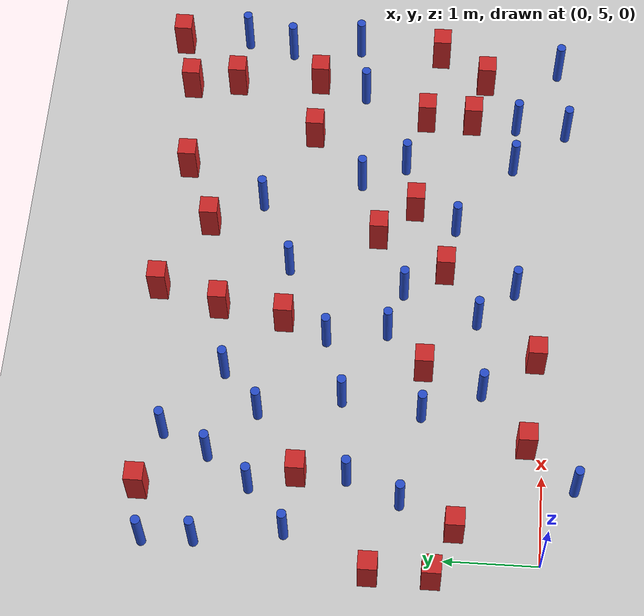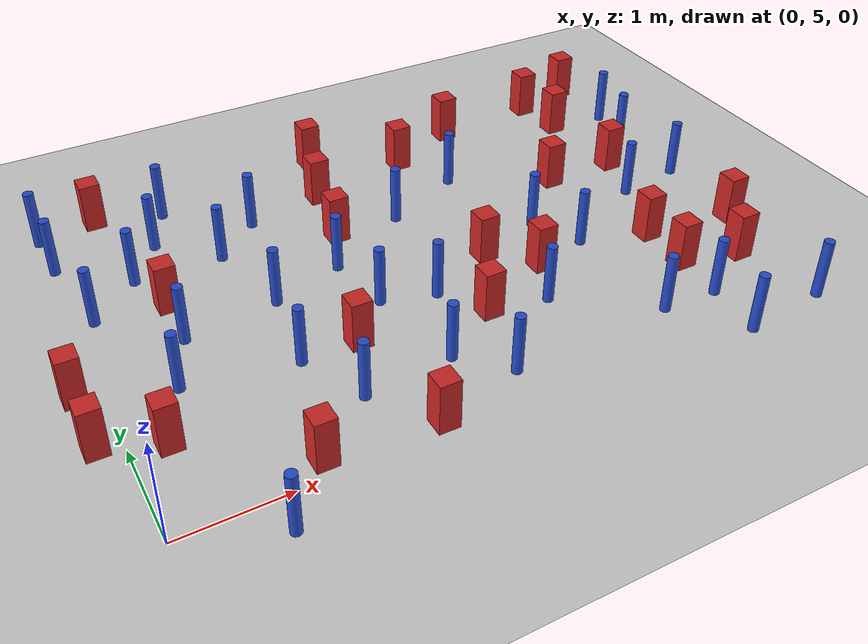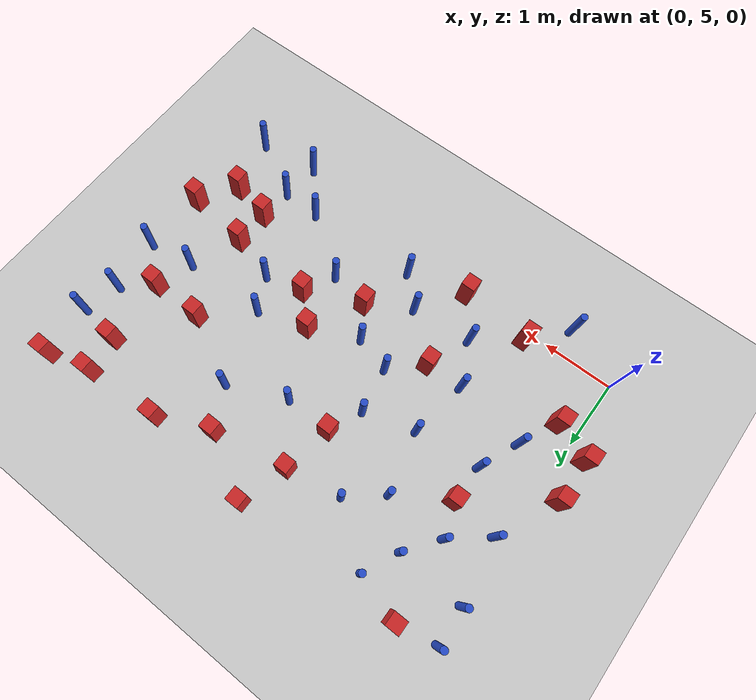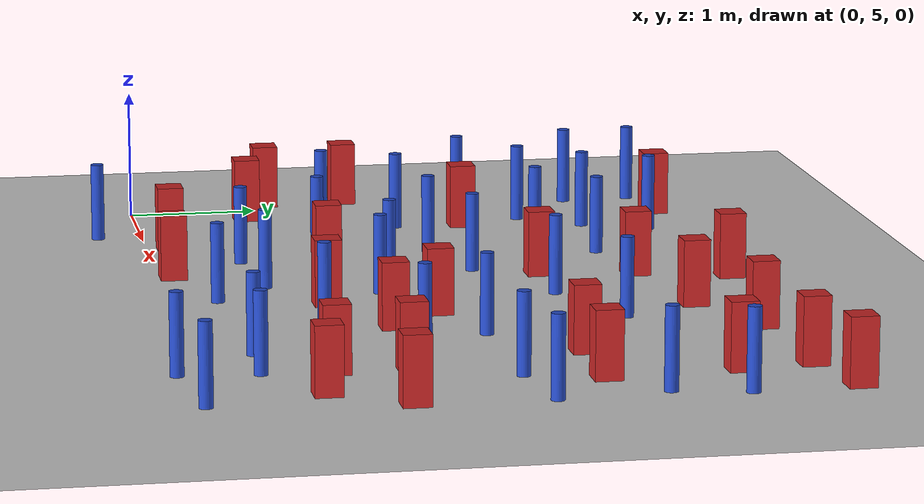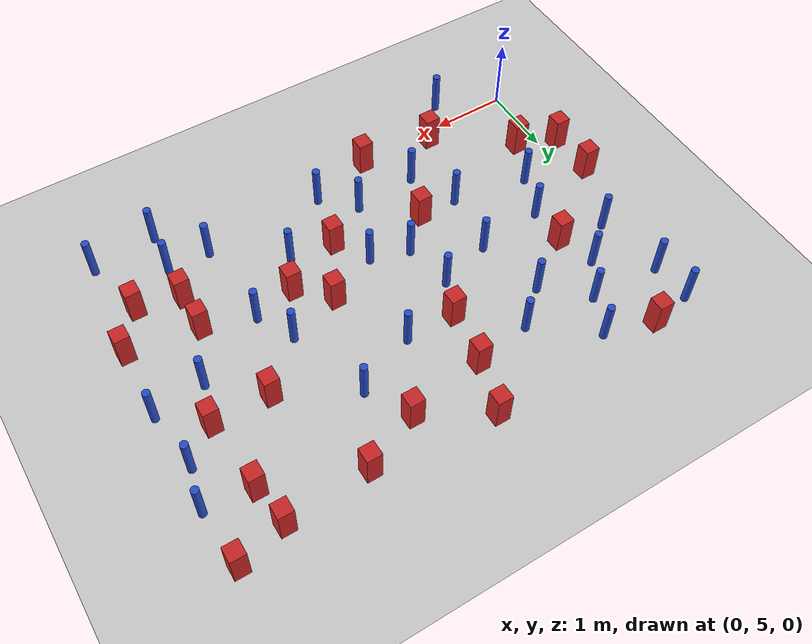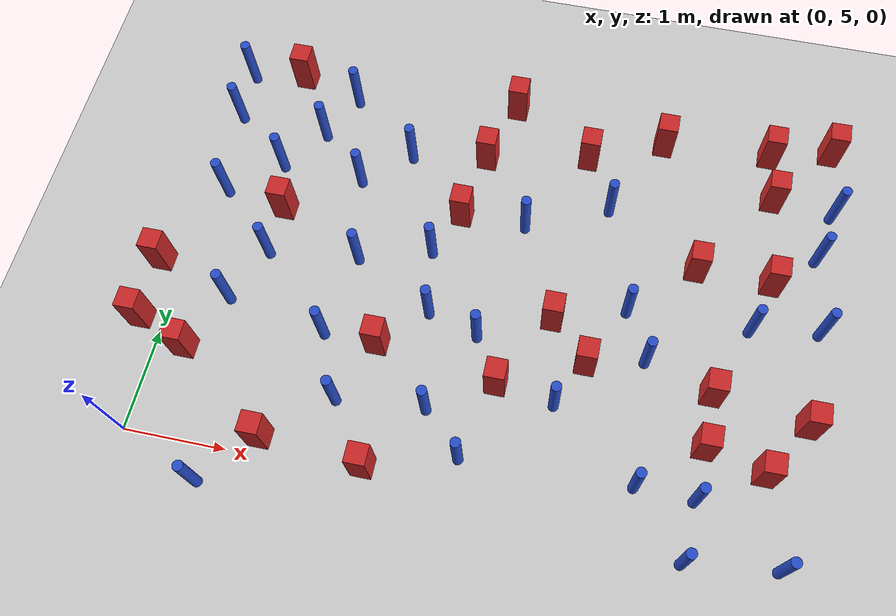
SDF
<sdf version="1.6">
 <world name="default">
  <model name="ground_plane">
   <static>1</static>
   <link name="link">
    <collision name="collision">
     <geometry><plane><normal>0 0 1</normal><size>100 100</size></plane></geometry>
     <surface><friction><ode><mu>100</mu><mu2>50</mu2></ode></friction></surface>
    </collision>
    <visual name="visual">
     <cast_shadows>0</cast_shadows>
     <geometry><plane><normal>0 0 1</normal><size>100 100</size></plane></geometry>
     <material>
      <ambient>1.0 1.0 1.0 1.0</ambient>
      <diffuse>0.8 0.8 0.8 1.0</diffuse>
      <specular>0.01 0.01 0.01 1.000000</specular>
     </material>
    </visual>
   </link>
  </model>
  <model name="pole_obstacle6">
   <static>true</static>
   <pose>1.97811473688 8.43375830006 7.38925637345e-09 -8.47170692798e-08 1.24976764928e-08 -1.74513093023e-07</pose>
   <link name="link">
    <pose>0 0 0.3 0 -0 0</pose>
    <inertial>
     <mass>1</mass>
     <inertia><ixx>0.145833</ixx><ixy>0</ixy><ixz>0</ixz><iyy>0.145833</iyy><iyz>0</iyz><izz>0.125</izz></inertia>
    </inertial>
    <collision name="collision">
     <geometry><cylinder><radius>0.05</radius><length>.6</length></cylinder></geometry>
    </collision>
    <visual name="visual">
     <geometry><cylinder><radius>0.05</radius><length>.6</length></cylinder></geometry>
     <material>
      <script><name>Gazebo/Blue</name><uri>file://media/materials/scripts/gazebo.material</uri></script>
     </material>
    </visual>
   </link>
  </model>
  <model name="square_post_obstacle17">
   <static>true</static>
   <pose>2.96418394877 9.25661673583 1.91545236811e-07 -7.35059704564e-06 1.12565212e-07 2.39332434364e-05</pose>
   <link name="link">
    <pose>0 0 0.25 0 -0 0</pose>
    <inertial>
     <mass>100</mass>
     <inertia>
      <ixx>0.166667</ixx>
      <ixy>0</ixy>
      <ixz>0</ixz>
      <iyy>0.166667</iyy>
      <iyz>0</iyz>
      <izz>0.166667</izz>
     </inertia>
    </inertial>
    <collision name="collision"><geometry><box><size>.2 .2 .5</size></box></geometry></collision>
    <visual name="visual">
     <geometry><box><size>.2 .2 .5</size></box></geometry>
     <material>
      <script><name>Gazebo/Red</name><uri>file://media/materials/scripts/gazebo.material</uri></script>
     </material>
    </visual>
   </link>
  </model>
  <model name="pole_obstacle13">
   <static>true</static>
   <pose>1.72117849599 7.15123532214 7.38925637345e-09 -8.47170692799e-08 1.24976765033e-08 -1.74513093018e-07</pose>
   <link name="link">
    <pose>0 0 0.3 0 -0 0</pose>
    <inertial>
     <mass>1</mass>
     <inertia><ixx>0.145833</ixx><ixy>0</ixy><ixz>0</ixz><iyy>0.145833</iyy><iyz>0</iyz><izz>0.125</izz></inertia>
    </inertial>
    <collision name="collision">
     <geometry><cylinder><radius>0.05</radius><length>.6</length></cylinder></geometry>
    </collision>
    <visual name="visual">
     <geometry><cylinder><radius>0.05</radius><length>.6</length></cylinder></geometry>
     <material>
      <script><name>Gazebo/Blue</name><uri>file://media/materials/scripts/gazebo.material</uri></script>
     </material>
    </visual>
   </link>
  </model>
  <model name="pole_obstacle25">
   <static>true</static>
   <pose>0.84421997213 4.65954832367 7.38925637345e-09 -8.471706928e-08 1.24976765086e-08 -1.74513093015e-07</pose>
   <link name="link">
    <pose>0 0 0.3 0 -0 0</pose>
    <inertial>
     <mass>1</mass>
     <inertia><ixx>0.145833</ixx><ixy>0</ixy><ixz>0</ixz><iyy>0.145833</iyy><iyz>0</iyz><izz>0.125</izz></inertia>
    </inertial>
    <collision name="collision">
     <geometry><cylinder><radius>0.05</radius><length>.6</length></cylinder></geometry>
    </collision>
    <visual name="visual">
     <geometry><cylinder><radius>0.05</radius><length>.6</length></cylinder></geometry>
     <material>
      <script><name>Gazebo/Blue</name><uri>file://media/materials/scripts/gazebo.material</uri></script>
     </material>
    </visual>
   </link>
  </model>
  <model name="pole_obstacle33">
   <static>true</static>
   <pose>0.0466083620109 8.56863921518 7.38925637345e-09 -8.47170692796e-08 1.24976764747e-08 -1.74513093035e-07</pose>
   <link name="link">
    <pose>0 0 0.3 0 -0 0</pose>
    <inertial>
     <mass>1</mass>
     <inertia><ixx>0.145833</ixx><ixy>0</ixy><ixz>0</ixz><iyy>0.145833</iyy><iyz>0</iyz><izz>0.125</izz></inertia>
    </inertial>
    <collision name="collision">
     <geometry><cylinder><radius>0.05</radius><length>.6</length></cylinder></geometry>
    </collision>
    <visual name="visual">
     <geometry><cylinder><radius>0.05</radius><length>.6</length></cylinder></geometry>
     <material>
      <script><name>Gazebo/Blue</name><uri>file://media/materials/scripts/gazebo.material</uri></script>
     </material>
    </visual>
   </link>
  </model>
  <model name="square_post_obstacle36">
   <static>true</static>
   <pose>2.13644922375 6.29774191643 1.91545236811e-07 -7.35059704564e-06 1.12565212e-07 2.39332434364e-05</pose>
   <link name="link">
    <pose>0 0 0.25 0 -0 0</pose>
    <inertial>
     <mass>100</mass>
     <inertia>
      <ixx>0.166667</ixx>
      <ixy>0</ixy>
      <ixz>0</ixz>
      <iyy>0.166667</iyy>
      <iyz>0</iyz>
      <izz>0.166667</izz>
     </inertia>
    </inertial>
    <collision name="collision"><geometry><box><size>.2 .2 .5</size></box></geometry></collision>
    <visual name="visual">
     <geometry><box><size>.2 .2 .5</size></box></geometry>
     <material>
      <script><name>Gazebo/Red</name><uri>file://media/materials/scripts/gazebo.material</uri></script>
     </material>
    </visual>
   </link>
  </model>
  <model name="pole_obstacle38">
   <static>true</static>
   <pose>3.14898956318 5.33751169385 7.38925637345e-09 -8.47170692798e-08 1.24976765033e-08 -1.74513093019e-07</pose>
   <link name="link">
    <pose>0 0 0.3 0 -0 0</pose>
    <inertial>
     <mass>1</mass>
     <inertia><ixx>0.145833</ixx><ixy>0</ixy><ixz>0</ixz><iyy>0.145833</iyy><iyz>0</iyz><izz>0.125</izz></inertia>
    </inertial>
    <collision name="collision">
     <geometry><cylinder><radius>0.05</radius><length>.6</length></cylinder></geometry>
    </collision>
    <visual name="visual">
     <geometry><cylinder><radius>0.05</radius><length>.6</length></cylinder></geometry>
     <material>
      <script><name>Gazebo/Blue</name><uri>file://media/materials/scripts/gazebo.material</uri></script>
     </material>
    </visual>
   </link>
  </model>
  <model name="square_post_obstacle53">
   <static>true</static>
   <pose>2.30620487452 5.09637616622 1.91545236811e-07 -7.35059704564e-06 1.12565212e-07 2.39332434364e-05</pose>
   <link name="link">
    <pose>0 0 0.25 0 -0 0</pose>
    <inertial>
     <mass>100</mass>
     <inertia>
      <ixx>0.166667</ixx>
      <ixy>0</ixy>
      <ixz>0</ixz>
      <iyy>0.166667</iyy>
      <iyz>0</iyz>
      <izz>0.166667</izz>
     </inertia>
    </inertial>
    <collision name="collision"><geometry><box><size>.2 .2 .5</size></box></geometry></collision>
    <visual name="visual">
     <geometry><box><size>.2 .2 .5</size></box></geometry>
     <material>
      <script><name>Gazebo/Red</name><uri>file://media/materials/scripts/gazebo.material</uri></script>
     </material>
    </visual>
   </link>
  </model>
  <model name="square_post_obstacle55">
   <static>true</static>
   <pose>5.36216218477 5.88626023428 1.91545236811e-07 -7.35059704564e-06 1.12565212e-07 2.39332434364e-05</pose>
   <link name="link">
    <pose>0 0 0.25 0 -0 0</pose>
    <inertial>
     <mass>100</mass>
     <inertia>
      <ixx>0.166667</ixx>
      <ixy>0</ixy>
      <ixz>0</ixz>
      <iyy>0.166667</iyy>
      <iyz>0</iyz>
      <izz>0.166667</izz>
     </inertia>
    </inertial>
    <collision name="collision"><geometry><box><size>.2 .2 .5</size></box></geometry></collision>
    <visual name="visual">
     <geometry><box><size>.2 .2 .5</size></box></geometry>
     <material>
      <script><name>Gazebo/Red</name><uri>file://media/materials/scripts/gazebo.material</uri></script>
     </material>
    </visual>
   </link>
  </model>
  <model name="pole_obstacle55">
   <static>true</static>
   <pose>3.30352325452 7.84174564454 7.38925637345e-09 -8.47170692798e-08 1.24976765033e-08 -1.74513093019e-07</pose>
   <link name="link">
    <pose>0 0 0.3 0 -0 0</pose>
    <inertial>
     <mass>1</mass>
     <inertia><ixx>0.145833</ixx><ixy>0</ixy><ixz>0</ixz><iyy>0.145833</iyy><iyz>0</iyz><izz>0.125</izz></inertia>
    </inertial>
    <collision name="collision">
     <geometry><cylinder><radius>0.05</radius><length>.6</length></cylinder></geometry>
    </collision>
    <visual name="visual">
     <geometry><cylinder><radius>0.05</radius><length>.6</length></cylinder></geometry>
     <material>
      <script><name>Gazebo/Blue</name><uri>file://media/materials/scripts/gazebo.material</uri></script>
     </material>
    </visual>
   </link>
  </model>
  <model name="square_post_obstacle60">
   <static>true</static>
   <pose>5.0766175703 7.69103012784 1.91545236811e-07 -7.35059704564e-06 1.12565212e-07 2.39332434364e-05</pose>
   <link name="link">
    <pose>0 0 0.25 0 -0 0</pose>
    <inertial>
     <mass>100</mass>
     <inertia>
      <ixx>0.166667</ixx>
      <ixy>0</ixy>
      <ixz>0</ixz>
      <iyy>0.166667</iyy>
      <iyz>0</iyz>
      <izz>0.166667</izz>
     </inertia>
    </inertial>
    <collision name="collision"><geometry><box><size>.2 .2 .5</size></box></geometry></collision>
    <visual name="visual">
     <geometry><box><size>.2 .2 .5</size></box></geometry>
     <material>
      <script><name>Gazebo/Red</name><uri>file://media/materials/scripts/gazebo.material</uri></script>
     </material>
    </visual>
   </link>
  </model>
  <model name="square_post_obstacle62">
   <static>true</static>
   <pose>5.37168386621 6.41705859318 1.91545236811e-07 -7.35059704564e-06 1.12565212e-07 2.39332434364e-05</pose>
   <link name="link">
    <pose>0 0 0.25 0 -0 0</pose>
    <inertial>
     <mass>100</mass>
     <inertia>
      <ixx>0.166667</ixx>
      <ixy>0</ixy>
      <ixz>0</ixz>
      <iyy>0.166667</iyy>
      <iyz>0</iyz>
      <izz>0.166667</izz>
     </inertia>
    </inertial>
    <collision name="collision"><geometry><box><size>.2 .2 .5</size></box></geometry></collision>
    <visual name="visual">
     <geometry><box><size>.2 .2 .5</size></box></geometry>
     <material>
      <script><name>Gazebo/Red</name><uri>file://media/materials/scripts/gazebo.material</uri></script>
     </material>
    </visual>
   </link>
  </model>
  <model name="square_post_obstacle67">
   <static>true</static>
   <pose>2.64503546699 7.84731310662 1.91545236811e-07 -7.35059704564e-06 1.12565212e-07 2.39332434364e-05</pose>
   <link name="link">
    <pose>0 0 0.25 0 -0 0</pose>
    <inertial>
     <mass>100</mass>
     <inertia>
      <ixx>0.166667</ixx>
      <ixy>0</ixy>
      <ixz>0</ixz>
      <iyy>0.166667</iyy>
      <iyz>0</iyz>
      <izz>0.166667</izz>
     </inertia>
    </inertial>
    <collision name="collision"><geometry><box><size>.2 .2 .5</size></box></geometry></collision>
    <visual name="visual">
     <geometry><box><size>.2 .2 .5</size></box></geometry>
     <material>
      <script><name>Gazebo/Red</name><uri>file://media/materials/scripts/gazebo.material</uri></script>
     </material>
    </visual>
   </link>
  </model>
  <model name="square_post_obstacle68">
   <static>true</static>
   <pose>1.29432825732 5.17916578212 1.91545236811e-07 -7.35059704564e-06 1.12565212e-07 2.39332434364e-05</pose>
   <link name="link">
    <pose>0 0 0.25 0 -0 0</pose>
    <inertial>
     <mass>100</mass>
     <inertia>
      <ixx>0.166667</ixx>
      <ixy>0</ixy>
      <ixz>0</ixz>
      <iyy>0.166667</iyy>
      <iyz>0</iyz>
      <izz>0.166667</izz>
     </inertia>
    </inertial>
    <collision name="collision"><geometry><box><size>.2 .2 .5</size></box></geometry></collision>
    <visual name="visual">
     <geometry><box><size>.2 .2 .5</size></box></geometry>
     <material>
      <script><name>Gazebo/Red</name><uri>file://media/materials/scripts/gazebo.material</uri></script>
     </material>
    </visual>
   </link>
  </model>
  <model name="pole_obstacle66">
   <static>true</static>
   <pose>1.23211396321 9.01468942937 7.38925637345e-09 -8.47170692798e-08 1.24976764881e-08 -1.74513093027e-07</pose>
   <link name="link">
    <pose>0 0 0.3 0 -0 0</pose>
    <inertial>
     <mass>1</mass>
     <inertia><ixx>0.145833</ixx><ixy>0</ixy><ixz>0</ixz><iyy>0.145833</iyy><iyz>0</iyz><izz>0.125</izz></inertia>
    </inertial>
    <collision name="collision">
     <geometry><cylinder><radius>0.05</radius><length>.6</length></cylinder></geometry>
    </collision>
    <visual name="visual">
     <geometry><cylinder><radius>0.05</radius><length>.6</length></cylinder></geometry>
     <material>
      <script><name>Gazebo/Blue</name><uri>file://media/materials/scripts/gazebo.material</uri></script>
     </material>
    </visual>
   </link>
  </model>
  <model name="pole_obstacle67">
   <static>true</static>
   <pose>1.00043300662 8.52085059311 7.38925637345e-09 -8.47170692797e-08 1.24976764856e-08 -1.74513093028e-07</pose>
   <link name="link">
    <pose>0 0 0.3 0 -0 0</pose>
    <inertial>
     <mass>1</mass>
     <inertia><ixx>0.145833</ixx><ixy>0</ixy><ixz>0</ixz><iyy>0.145833</iyy><iyz>0</iyz><izz>0.125</izz></inertia>
    </inertial>
    <collision name="collision">
     <geometry><cylinder><radius>0.05</radius><length>.6</length></cylinder></geometry>
    </collision>
    <visual name="visual">
     <geometry><cylinder><radius>0.05</radius><length>.6</length></cylinder></geometry>
     <material>
      <script><name>Gazebo/Blue</name><uri>file://media/materials/scripts/gazebo.material</uri></script>
     </material>
    </visual>
   </link>
  </model>
  <model name="square_post_obstacle74">
   <static>true</static>
   <pose>5.93639313642 5.74820276157 1.91545236811e-07 -7.35059704564e-06 1.12565212e-07 2.39332434364e-05</pose>
   <link name="link">
    <pose>0 0 0.25 0 -0 0</pose>
    <inertial>
     <mass>100</mass>
     <inertia>
      <ixx>0.166667</ixx>
      <ixy>0</ixy>
      <ixz>0</ixz>
      <iyy>0.166667</iyy>
      <iyz>0</iyz>
      <izz>0.166667</izz>
     </inertia>
    </inertial>
    <collision name="collision"><geometry><box><size>.2 .2 .5</size></box></geometry></collision>
    <visual name="visual">
     <geometry><box><size>.2 .2 .5</size></box></geometry>
     <material>
      <script><name>Gazebo/Red</name><uri>file://media/materials/scripts/gazebo.material</uri></script>
     </material>
    </visual>
   </link>
  </model>
  <model name="pole_obstacle70">
   <static>true</static>
   <pose>3.06883253936 6.56024751738 7.38925637345e-09 -8.47170692798e-08 1.24976765033e-08 -1.74513093019e-07</pose>
   <link name="link">
    <pose>0 0 0.3 0 -0 0</pose>
    <inertial>
     <mass>1</mass>
     <inertia><ixx>0.145833</ixx><ixy>0</ixy><ixz>0</ixz><iyy>0.145833</iyy><iyz>0</iyz><izz>0.125</izz></inertia>
    </inertial>
    <collision name="collision">
     <geometry><cylinder><radius>0.05</radius><length>.6</length></cylinder></geometry>
    </collision>
    <visual name="visual">
     <geometry><cylinder><radius>0.05</radius><length>.6</length></cylinder></geometry>
     <material>
      <script><name>Gazebo/Blue</name><uri>file://media/materials/scripts/gazebo.material</uri></script>
     </material>
    </visual>
   </link>
  </model>
  <model name="pole_obstacle77">
   <static>true</static>
   <pose>0.577146240272 6.47438790878 7.38925637345e-09 -8.471706928e-08 1.24976765086e-08 -1.74513093015e-07</pose>
   <link name="link">
    <pose>0 0 0.3 0 -0 0</pose>
    <inertial>
     <mass>1</mass>
     <inertia><ixx>0.145833</ixx><ixy>0</ixy><ixz>0</ixz><iyy>0.145833</iyy><iyz>0</iyz><izz>0.125</izz></inertia>
    </inertial>
    <collision name="collision">
     <geometry><cylinder><radius>0.05</radius><length>.6</length></cylinder></geometry>
    </collision>
    <visual name="visual">
     <geometry><cylinder><radius>0.05</radius><length>.6</length></cylinder></geometry>
     <material>
      <script><name>Gazebo/Blue</name><uri>file://media/materials/scripts/gazebo.material</uri></script>
     </material>
    </visual>
   </link>
  </model>
  <model name="square_post_obstacle78">
   <static>true</static>
   <pose>5.75801491974 8.6457235525 1.91545236811e-07 -7.35059704564e-06 1.12565212e-07 2.39332434364e-05</pose>
   <link name="link">
    <pose>0 0 0.25 0 -0 0</pose>
    <inertial>
     <mass>100</mass>
     <inertia>
      <ixx>0.166667</ixx>
      <ixy>0</ixy>
      <ixz>0</ixz>
      <iyy>0.166667</iyy>
      <iyz>0</iyz>
      <izz>0.166667</izz>
     </inertia>
    </inertial>
    <collision name="collision"><geometry><box><size>.2 .2 .5</size></box></geometry></collision>
    <visual name="visual">
     <geometry><box><size>.2 .2 .5</size></box></geometry>
     <material>
      <script><name>Gazebo/Red</name><uri>file://media/materials/scripts/gazebo.material</uri></script>
     </material>
    </visual>
   </link>
  </model>
  <model name="pole_obstacle81">
   <static>true</static>
   <pose>1.51929210031 8.03765635364 7.38925637345e-09 -8.471706928e-08 1.24976765113e-08 -1.74513093014e-07</pose>
   <link name="link">
    <pose>0 0 0.3 0 -0 0</pose>
    <inertial>
     <mass>1</mass>
     <inertia><ixx>0.145833</ixx><ixy>0</ixy><ixz>0</ixz><iyy>0.145833</iyy><iyz>0</iyz><izz>0.125</izz></inertia>
    </inertial>
    <collision name="collision">
     <geometry><cylinder><radius>0.05</radius><length>.6</length></cylinder></geometry>
    </collision>
    <visual name="visual">
     <geometry><cylinder><radius>0.05</radius><length>.6</length></cylinder></geometry>
     <material>
      <script><name>Gazebo/Blue</name><uri>file://media/materials/scripts/gazebo.material</uri></script>
     </material>
    </visual>
   </link>
  </model>
  <model name="pole_obstacle82">
   <static>true</static>
   <pose>1.88665570525 5.66354823339 7.38925637345e-09 -8.47170692799e-08 1.24976765033e-08 -1.74513093018e-07</pose>
   <link name="link">
    <pose>0 0 0.3 0 -0 0</pose>
    <inertial>
     <mass>1</mass>
     <inertia><ixx>0.145833</ixx><ixy>0</ixy><ixz>0</ixz><iyy>0.145833</iyy><iyz>0</iyz><izz>0.125</izz></inertia>
    </inertial>
    <collision name="collision">
     <geometry><cylinder><radius>0.05</radius><length>.6</length></cylinder></geometry>
    </collision>
    <visual name="visual">
     <geometry><cylinder><radius>0.05</radius><length>.6</length></cylinder></geometry>
     <material>
      <script><name>Gazebo/Blue</name><uri>file://media/materials/scripts/gazebo.material</uri></script>
     </material>
    </visual>
   </link>
  </model>
  <model name="pole_obstacle86">
   <static>true</static>
   <pose>5.33539405761 5.37617692699 7.38925637345e-09 -8.47170692796e-08 1.24976764786e-08 -1.74513093032e-07</pose>
   <link name="link">
    <pose>0 0 0.3 0 -0 0</pose>
    <inertial>
     <mass>1</mass>
     <inertia><ixx>0.145833</ixx><ixy>0</ixy><ixz>0</ixz><iyy>0.145833</iyy><iyz>0</iyz><izz>0.125</izz></inertia>
    </inertial>
    <collision name="collision">
     <geometry><cylinder><radius>0.05</radius><length>.6</length></cylinder></geometry>
    </collision>
    <visual name="visual">
     <geometry><cylinder><radius>0.05</radius><length>.6</length></cylinder></geometry>
     <material>
      <script><name>Gazebo/Blue</name><uri>file://media/materials/scripts/gazebo.material</uri></script>
     </material>
    </visual>
   </link>
  </model>
  <model name="pole_obstacle94">
   <static>true</static>
   <pose>0.812473880551 7.04076689454 7.38925637345e-09 -8.471706928e-08 1.24976765086e-08 -1.74513093015e-07</pose>
   <link name="link">
    <pose>0 0 0.3 0 -0 0</pose>
    <inertial>
     <mass>1</mass>
     <inertia><ixx>0.145833</ixx><ixy>0</ixy><ixz>0</ixz><iyy>0.145833</iyy><iyz>0</iyz><izz>0.125</izz></inertia>
    </inertial>
    <collision name="collision">
     <geometry><cylinder><radius>0.05</radius><length>.6</length></cylinder></geometry>
    </collision>
    <visual name="visual">
     <geometry><cylinder><radius>0.05</radius><length>.6</length></cylinder></geometry>
     <material>
      <script><name>Gazebo/Blue</name><uri>file://media/materials/scripts/gazebo.material</uri></script>
     </material>
    </visual>
   </link>
  </model>
  <model name="square_post_obstacle88">
   <static>true</static>
   <pose>3.81712292997 8.77498464341 1.91545236811e-07 -7.35059704564e-06 1.12565212e-07 2.39332434364e-05</pose>
   <link name="link">
    <pose>0 0 0.25 0 -0 0</pose>
    <inertial>
     <mass>100</mass>
     <inertia>
      <ixx>0.166667</ixx>
      <ixy>0</ixy>
      <ixz>0</ixz>
      <iyy>0.166667</iyy>
      <iyz>0</iyz>
      <izz>0.166667</izz>
     </inertia>
    </inertial>
    <collision name="collision"><geometry><box><size>.2 .2 .5</size></box></geometry></collision>
    <visual name="visual">
     <geometry><box><size>.2 .2 .5</size></box></geometry>
     <material>
      <script><name>Gazebo/Red</name><uri>file://media/materials/scripts/gazebo.material</uri></script>
     </material>
    </visual>
   </link>
  </model>
  <model name="square_post_obstacle97">
   <static>true</static>
   <pose>0.310640364188 5.89950248195 1.91545236811e-07 -7.35059704564e-06 1.12565212e-07 2.39332434364e-05</pose>
   <link name="link">
    <pose>0 0 0.25 0 -0 0</pose>
    <inertial>
     <mass>100</mass>
     <inertia>
      <ixx>0.166667</ixx>
      <ixy>0</ixy>
      <ixz>0</ixz>
      <iyy>0.166667</iyy>
      <iyz>0</iyz>
      <izz>0.166667</izz>
     </inertia>
    </inertial>
    <collision name="collision"><geometry><box><size>.2 .2 .5</size></box></geometry></collision>
    <visual name="visual">
     <geometry><box><size>.2 .2 .5</size></box></geometry>
     <material>
      <script><name>Gazebo/Red</name><uri>file://media/materials/scripts/gazebo.material</uri></script>
     </material>
    </visual>
   </link>
  </model>
  <model name="pole_obstacle115">
   <static>true</static>
   <pose>6.25512532329 8.03813822539 7.38925637345e-09 -8.47170692797e-08 1.24976764908e-08 -1.74513093024e-07</pose>
   <link name="link">
    <pose>0 0 0.3 0 -0 0</pose>
    <inertial>
     <mass>1</mass>
     <inertia><ixx>0.145833</ixx><ixy>0</ixy><ixz>0</ixz><iyy>0.145833</iyy><iyz>0</iyz><izz>0.125</izz></inertia>
    </inertial>
    <collision name="collision">
     <geometry><cylinder><radius>0.05</radius><length>.6</length></cylinder></geometry>
    </collision>
    <visual name="visual">
     <geometry><cylinder><radius>0.05</radius><length>.6</length></cylinder></geometry>
     <material>
      <script><name>Gazebo/Blue</name><uri>file://media/materials/scripts/gazebo.material</uri></script>
     </material>
    </visual>
   </link>
  </model>
  <model name="pole_obstacle128">
   <static>true</static>
   <pose>3.92577561285 6.01952358238 7.38925637345e-09 -8.47170692798e-08 1.24976765033e-08 -1.74513093019e-07</pose>
   <link name="link">
    <pose>0 0 0.3 0 -0 0</pose>
    <inertial>
     <mass>1</mass>
     <inertia><ixx>0.145833</ixx><ixy>0</ixy><ixz>0</ixz><iyy>0.145833</iyy><iyz>0</iyz><izz>0.125</izz></inertia>
    </inertial>
    <collision name="collision">
     <geometry><cylinder><radius>0.05</radius><length>.6</length></cylinder></geometry>
    </collision>
    <visual name="visual">
     <geometry><cylinder><radius>0.05</radius><length>.6</length></cylinder></geometry>
     <material>
      <script><name>Gazebo/Blue</name><uri>file://media/materials/scripts/gazebo.material</uri></script>
     </material>
    </visual>
   </link>
  </model>
  <model name="pole_obstacle131">
   <static>true</static>
   <pose>0.0209783094043 9.10523732424 7.38925637345e-09 -8.47170692796e-08 1.24976764795e-08 -1.74513093032e-07</pose>
   <link name="link">
    <pose>0 0 0.3 0 -0 0</pose>
    <inertial>
     <mass>1</mass>
     <inertia><ixx>0.145833</ixx><ixy>0</ixy><ixz>0</ixz><iyy>0.145833</iyy><iyz>0</iyz><izz>0.125</izz></inertia>
    </inertial>
    <collision name="collision">
     <geometry><cylinder><radius>0.05</radius><length>.6</length></cylinder></geometry>
    </collision>
    <visual name="visual">
     <geometry><cylinder><radius>0.05</radius><length>.6</length></cylinder></geometry>
     <material>
      <script><name>Gazebo/Blue</name><uri>file://media/materials/scripts/gazebo.material</uri></script>
     </material>
    </visual>
   </link>
  </model>
  <model name="pole_obstacle133">
   <static>true</static>
   <pose>0.179986098436 7.64838408767 7.38925637345e-09 -8.47170692799e-08 1.24976765068e-08 -1.74513093018e-07</pose>
   <link name="link">
    <pose>0 0 0.3 0 -0 0</pose>
    <inertial>
     <mass>1</mass>
     <inertia><ixx>0.145833</ixx><ixy>0</ixy><ixz>0</ixz><iyy>0.145833</iyy><iyz>0</iyz><izz>0.125</izz></inertia>
    </inertial>
    <collision name="collision">
     <geometry><cylinder><radius>0.05</radius><length>.6</length></cylinder></geometry>
    </collision>
    <visual name="visual">
     <geometry><cylinder><radius>0.05</radius><length>.6</length></cylinder></geometry>
     <material>
      <script><name>Gazebo/Blue</name><uri>file://media/materials/scripts/gazebo.material</uri></script>
     </material>
    </visual>
   </link>
  </model>
  <model name="square_post_obstacle118">
   <static>true</static>
   <pose>5.83151491091 7.68344500488 1.91545236811e-07 -7.35059704564e-06 1.12565212e-07 2.39332434364e-05</pose>
   <link name="link">
    <pose>0 0 0.25 0 -0 0</pose>
    <inertial>
     <mass>100</mass>
     <inertia>
      <ixx>0.166667</ixx>
      <ixy>0</ixy>
      <ixz>0</ixz>
      <iyy>0.166667</iyy>
      <iyz>0</iyz>
      <izz>0.166667</izz>
     </inertia>
    </inertial>
    <collision name="collision"><geometry><box><size>.2 .2 .5</size></box></geometry></collision>
    <visual name="visual">
     <geometry><box><size>.2 .2 .5</size></box></geometry>
     <material>
      <script><name>Gazebo/Red</name><uri>file://media/materials/scripts/gazebo.material</uri></script>
     </material>
    </visual>
   </link>
  </model>
  <model name="square_post_obstacle123">
   <static>true</static>
   <pose>4.57156933756 9.09993179304 1.91545236811e-07 -7.35059704564e-06 1.12565212e-07 2.39332434364e-05</pose>
   <link name="link">
    <pose>0 0 0.25 0 -0 0</pose>
    <inertial>
     <mass>100</mass>
     <inertia>
      <ixx>0.166667</ixx>
      <ixy>0</ixy>
      <ixz>0</ixz>
      <iyy>0.166667</iyy>
      <iyz>0</iyz>
      <izz>0.166667</izz>
     </inertia>
    </inertial>
    <collision name="collision"><geometry><box><size>.2 .2 .5</size></box></geometry></collision>
    <visual name="visual">
     <geometry><box><size>.2 .2 .5</size></box></geometry>
     <material>
      <script><name>Gazebo/Red</name><uri>file://media/materials/scripts/gazebo.material</uri></script>
     </material>
    </visual>
   </link>
  </model>
  <model name="square_post_obstacle126">
   <static>true</static>
   <pose>4.15135688864 6.4876872852 1.91545236811e-07 -7.35059704564e-06 1.12565212e-07 2.39332434364e-05</pose>
   <link name="link">
    <pose>0 0 0.25 0 -0 0</pose>
    <inertial>
     <mass>100</mass>
     <inertia>
      <ixx>0.166667</ixx>
      <ixy>0</ixy>
      <ixz>0</ixz>
      <iyy>0.166667</iyy>
      <iyz>0</iyz>
      <izz>0.166667</izz>
     </inertia>
    </inertial>
    <collision name="collision"><geometry><box><size>.2 .2 .5</size></box></geometry></collision>
    <visual name="visual">
     <geometry><box><size>.2 .2 .5</size></box></geometry>
     <material>
      <script><name>Gazebo/Red</name><uri>file://media/materials/scripts/gazebo.material</uri></script>
     </material>
    </visual>
   </link>
  </model>
  <model name="pole_obstacle145">
   <static>true</static>
   <pose>5.28204686824 4.80525340802 7.38925637345e-09 -8.47170692796e-08 1.24976764786e-08 -1.74513093032e-07</pose>
   <link name="link">
    <pose>0 0 0.3 0 -0 0</pose>
    <inertial>
     <mass>1</mass>
     <inertia><ixx>0.145833</ixx><ixy>0</ixy><ixz>0</ixz><iyy>0.145833</iyy><iyz>0</iyz><izz>0.125</izz></inertia>
    </inertial>
    <collision name="collision">
     <geometry><cylinder><radius>0.05</radius><length>.6</length></cylinder></geometry>
    </collision>
    <visual name="visual">
     <geometry><cylinder><radius>0.05</radius><length>.6</length></cylinder></geometry>
     <material>
      <script><name>Gazebo/Blue</name><uri>file://media/materials/scripts/gazebo.material</uri></script>
     </material>
    </visual>
   </link>
  </model>
  <model name="pole_obstacle146">
   <static>true</static>
   <pose>4.77759938572 5.39686395434 7.38925637345e-09 -8.47170692796e-08 1.24976764786e-08 -1.74513093032e-07</pose>
   <link name="link">
    <pose>0 0 0.3 0 -0 0</pose>
    <inertial>
     <mass>1</mass>
     <inertia><ixx>0.145833</ixx><ixy>0</ixy><ixz>0</ixz><iyy>0.145833</iyy><iyz>0</iyz><izz>0.125</izz></inertia>
    </inertial>
    <collision name="collision">
     <geometry><cylinder><radius>0.05</radius><length>.6</length></cylinder></geometry>
    </collision>
    <visual name="visual">
     <geometry><cylinder><radius>0.05</radius><length>.6</length></cylinder></geometry>
     <material>
      <script><name>Gazebo/Blue</name><uri>file://media/materials/scripts/gazebo.material</uri></script>
     </material>
    </visual>
   </link>
  </model>
  <model name="pole_obstacle147">
   <static>true</static>
   <pose>4.46471975863 7.10875669776 7.38925637345e-09 -8.47170692796e-08 1.24976764786e-08 -1.74513093032e-07</pose>
   <link name="link">
    <pose>0 0 0.3 0 -0 0</pose>
    <inertial>
     <mass>1</mass>
     <inertia><ixx>0.145833</ixx><ixy>0</ixy><ixz>0</ixz><iyy>0.145833</iyy><iyz>0</iyz><izz>0.125</izz></inertia>
    </inertial>
    <collision name="collision">
     <geometry><cylinder><radius>0.05</radius><length>.6</length></cylinder></geometry>
    </collision>
    <visual name="visual">
     <geometry><cylinder><radius>0.05</radius><length>.6</length></cylinder></geometry>
     <material>
      <script><name>Gazebo/Blue</name><uri>file://media/materials/scripts/gazebo.material</uri></script>
     </material>
    </visual>
   </link>
  </model>
  <model name="square_post_obstacle153">
   <static>true</static>
   <pose>-0.218376861749 6.75658897029 1.91545236811e-07 -7.35059704564e-06 1.12565212e-07 2.39332434364e-05</pose>
   <link name="link">
    <pose>0 0 0.25 0 -0 0</pose>
    <inertial>
     <mass>100</mass>
     <inertia>
      <ixx>0.166667</ixx>
      <ixy>0</ixy>
      <ixz>0</ixz>
      <iyy>0.166667</iyy>
      <iyz>0</iyz>
      <izz>0.166667</izz>
     </inertia>
    </inertial>
    <collision name="collision"><geometry><box><size>.2 .2 .5</size></box></geometry></collision>
    <visual name="visual">
     <geometry><box><size>.2 .2 .5</size></box></geometry>
     <material>
      <script><name>Gazebo/Red</name><uri>file://media/materials/scripts/gazebo.material</uri></script>
     </material>
    </visual>
   </link>
  </model>
  <model name="pole_obstacle160">
   <static>true</static>
   <pose>2.74952292476 5.74192639418 7.38925637345e-09 -8.47170692798e-08 1.24976765033e-08 -1.74513093019e-07</pose>
   <link name="link">
    <pose>0 0 0.3 0 -0 0</pose>
    <inertial>
     <mass>1</mass>
     <inertia><ixx>0.145833</ixx><ixy>0</ixy><ixz>0</ixz><iyy>0.145833</iyy><iyz>0</iyz><izz>0.125</izz></inertia>
    </inertial>
    <collision name="collision">
     <geometry><cylinder><radius>0.05</radius><length>.6</length></cylinder></geometry>
    </collision>
    <visual name="visual">
     <geometry><cylinder><radius>0.05</radius><length>.6</length></cylinder></geometry>
     <material>
      <script><name>Gazebo/Blue</name><uri>file://media/materials/scripts/gazebo.material</uri></script>
     </material>
    </visual>
   </link>
  </model>
  <model name="pole_obstacle161">
   <static>true</static>
   <pose>4.71283864033 6.62010448852 7.38925637345e-09 -8.47170692796e-08 1.24976764786e-08 -1.74513093032e-07</pose>
   <link name="link">
    <pose>0 0 0.3 0 -0 0</pose>
    <inertial>
     <mass>1</mass>
     <inertia><ixx>0.145833</ixx><ixy>0</ixy><ixz>0</ixz><iyy>0.145833</iyy><iyz>0</iyz><izz>0.125</izz></inertia>
    </inertial>
    <collision name="collision">
     <geometry><cylinder><radius>0.05</radius><length>.6</length></cylinder></geometry>
    </collision>
    <visual name="visual">
     <geometry><cylinder><radius>0.05</radius><length>.6</length></cylinder></geometry>
     <material>
      <script><name>Gazebo/Blue</name><uri>file://media/materials/scripts/gazebo.material</uri></script>
     </material>
    </visual>
   </link>
  </model>
  <model name="square_post_obstacle154">
   <static>true</static>
   <pose>0.589165098933 9.20454694826 1.91545236811e-07 -7.35059704564e-06 1.12565212e-07 2.39332434364e-05</pose>
   <link name="link">
    <pose>0 0 0.25 0 -0 0</pose>
    <inertial>
     <mass>100</mass>
     <inertia>
      <ixx>0.166667</ixx>
      <ixy>0</ixy>
      <ixz>0</ixz>
      <iyy>0.166667</iyy>
      <iyz>0</iyz>
      <izz>0.166667</izz>
     </inertia>
    </inertial>
    <collision name="collision"><geometry><box><size>.2 .2 .5</size></box></geometry></collision>
    <visual name="visual">
     <geometry><box><size>.2 .2 .5</size></box></geometry>
     <material>
      <script><name>Gazebo/Red</name><uri>file://media/materials/scripts/gazebo.material</uri></script>
     </material>
    </visual>
   </link>
  </model>
  <model name="pole_obstacle165">
   <static>true</static>
   <pose>5.67104614598 7.14033706254 7.38925637345e-09 -8.47170692796e-08 1.24976764786e-08 -1.74513093032e-07</pose>
   <link name="link">
    <pose>0 0 0.3 0 -0 0</pose>
    <inertial>
     <mass>1</mass>
     <inertia><ixx>0.145833</ixx><ixy>0</ixy><ixz>0</ixz><iyy>0.145833</iyy><iyz>0</iyz><izz>0.125</izz></inertia>
    </inertial>
    <collision name="collision">
     <geometry><cylinder><radius>0.05</radius><length>.6</length></cylinder></geometry>
    </collision>
    <visual name="visual">
     <geometry><cylinder><radius>0.05</radius><length>.6</length></cylinder></geometry>
     <material>
      <script><name>Gazebo/Blue</name><uri>file://media/materials/scripts/gazebo.material</uri></script>
     </material>
    </visual>
   </link>
  </model>
  <model name="pole_obstacle168">
   <static>true</static>
   <pose>4.12264926454 8.20353617027 7.38925637345e-09 -8.471706928e-08 1.24976765081e-08 -1.74513093015e-07</pose>
   <link name="link">
    <pose>0 0 0.3 0 -0 0</pose>
    <inertial>
     <mass>1</mass>
     <inertia><ixx>0.145833</ixx><ixy>0</ixy><ixz>0</ixz><iyy>0.145833</iyy><iyz>0</iyz><izz>0.125</izz></inertia>
    </inertial>
    <collision name="collision">
     <geometry><cylinder><radius>0.05</radius><length>.6</length></cylinder></geometry>
    </collision>
    <visual name="visual">
     <geometry><cylinder><radius>0.05</radius><length>.6</length></cylinder></geometry>
     <material>
      <script><name>Gazebo/Blue</name><uri>file://media/materials/scripts/gazebo.material</uri></script>
     </material>
    </visual>
   </link>
  </model>
  <model name="pole_obstacle169">
   <static>true</static>
   <pose>2.43602113883 7.37016388901 7.38925637345e-09 -8.47170692798e-08 1.24976765033e-08 -1.74513093019e-07</pose>
   <link name="link">
    <pose>0 0 0.3 0 -0 0</pose>
    <inertial>
     <mass>1</mass>
     <inertia><ixx>0.145833</ixx><ixy>0</ixy><ixz>0</ixz><iyy>0.145833</iyy><iyz>0</iyz><izz>0.125</izz></inertia>
    </inertial>
    <collision name="collision">
     <geometry><cylinder><radius>0.05</radius><length>.6</length></cylinder></geometry>
    </collision>
    <visual name="visual">
     <geometry><cylinder><radius>0.05</radius><length>.6</length></cylinder></geometry>
     <material>
      <script><name>Gazebo/Blue</name><uri>file://media/materials/scripts/gazebo.material</uri></script>
     </material>
    </visual>
   </link>
  </model>
  <model name="square_post_obstacle165">
   <static>true</static>
   <pose>0.827917413915 7.56980794968 1.91545236811e-07 -7.35059704564e-06 1.12565212e-07 2.39332434364e-05</pose>
   <link name="link">
    <pose>0 0 0.25 0 -0 0</pose>
    <inertial>
     <mass>100</mass>
     <inertia>
      <ixx>0.166667</ixx>
      <ixy>0</ixy>
      <ixz>0</ixz>
      <iyy>0.166667</iyy>
      <iyz>0</iyz>
      <izz>0.166667</izz>
     </inertia>
    </inertial>
    <collision name="collision"><geometry><box><size>.2 .2 .5</size></box></geometry></collision>
    <visual name="visual">
     <geometry><box><size>.2 .2 .5</size></box></geometry>
     <material>
      <script><name>Gazebo/Red</name><uri>file://media/materials/scripts/gazebo.material</uri></script>
     </material>
    </visual>
   </link>
  </model>
  <model name="square_post_obstacle168">
   <static>true</static>
   <pose>2.76240771707 8.57047330468 1.91545236811e-07 -7.35059704564e-06 1.12565212e-07 2.39332434364e-05</pose>
   <link name="link">
    <pose>0 0 0.25 0 -0 0</pose>
    <inertial>
     <mass>100</mass>
     <inertia>
      <ixx>0.166667</ixx>
      <ixy>0</ixy>
      <ixz>0</ixz>
      <iyy>0.166667</iyy>
      <iyz>0</iyz>
      <izz>0.166667</izz>
     </inertia>
    </inertial>
    <collision name="collision"><geometry><box><size>.2 .2 .5</size></box></geometry></collision>
    <visual name="visual">
     <geometry><box><size>.2 .2 .5</size></box></geometry>
     <material>
      <script><name>Gazebo/Red</name><uri>file://media/materials/scripts/gazebo.material</uri></script>
     </material>
    </visual>
   </link>
  </model>
  <model name="pole_obstacle178">
   <static>true</static>
   <pose>6.34677730829 7.24064969716 7.38925637345e-09 -8.47170692796e-08 1.24976764786e-08 -1.74513093032e-07</pose>
   <link name="link">
    <pose>0 0 0.3 0 -0 0</pose>
    <inertial>
     <mass>1</mass>
     <inertia><ixx>0.145833</ixx><ixy>0</ixy><ixz>0</ixz><iyy>0.145833</iyy><iyz>0</iyz><izz>0.125</izz></inertia>
    </inertial>
    <collision name="collision">
     <geometry><cylinder><radius>0.05</radius><length>.6</length></cylinder></geometry>
    </collision>
    <visual name="visual">
     <geometry><cylinder><radius>0.05</radius><length>.6</length></cylinder></geometry>
     <material>
      <script><name>Gazebo/Blue</name><uri>file://media/materials/scripts/gazebo.material</uri></script>
     </material>
    </visual>
   </link>
  </model>
  <model name="pole_obstacle181">
   <static>true</static>
   <pose>1.59719268275 6.29633015461 7.38925637345e-09 -8.47170692799e-08 1.24976765033e-08 -1.74513093018e-07</pose>
   <link name="link">
    <pose>0 0 0.3 0 -0 0</pose>
    <inertial>
     <mass>1</mass>
     <inertia><ixx>0.145833</ixx><ixy>0</ixy><ixz>0</ixz><iyy>0.145833</iyy><iyz>0</iyz><izz>0.125</izz></inertia>
    </inertial>
    <collision name="collision">
     <geometry><cylinder><radius>0.05</radius><length>.6</length></cylinder></geometry>
    </collision>
    <visual name="visual">
     <geometry><cylinder><radius>0.05</radius><length>.6</length></cylinder></geometry>
     <material>
      <script><name>Gazebo/Blue</name><uri>file://media/materials/scripts/gazebo.material</uri></script>
     </material>
    </visual>
   </link>
  </model>
  <model name="square_post_obstacle170">
   <static>true</static>
   <pose>-0.213196270314 6.11359213067 1.91545236811e-07 -7.35059704564e-06 1.12565212e-07 2.39332434364e-05</pose>
   <link name="link">
    <pose>0 0 0.25 0 -0 0</pose>
    <inertial>
     <mass>100</mass>
     <inertia>
      <ixx>0.166667</ixx>
      <ixy>0</ixy>
      <ixz>0</ixz>
      <iyy>0.166667</iyy>
      <iyz>0</iyz>
      <izz>0.166667</izz>
     </inertia>
    </inertial>
    <collision name="collision"><geometry><box><size>.2 .2 .5</size></box></geometry></collision>
    <visual name="visual">
     <geometry><box><size>.2 .2 .5</size></box></geometry>
     <material>
      <script><name>Gazebo/Red</name><uri>file://media/materials/scripts/gazebo.material</uri></script>
     </material>
    </visual>
   </link>
  </model>
  <model name="square_post_obstacle186">
   <static>true</static>
   <pose>5.68366009822 9.1752030874 1.91545236811e-07 -7.35059704564e-06 1.12565212e-07 2.39332434364e-05</pose>
   <link name="link">
    <pose>0 0 0.25 0 -0 0</pose>
    <inertial>
     <mass>100</mass>
     <inertia>
      <ixx>0.166667</ixx>
      <ixy>0</ixy>
      <ixz>0</ixz>
      <iyy>0.166667</iyy>
      <iyz>0</iyz>
      <izz>0.166667</izz>
     </inertia>
    </inertial>
    <collision name="collision"><geometry><box><size>.2 .2 .5</size></box></geometry></collision>
    <visual name="visual">
     <geometry><box><size>.2 .2 .5</size></box></geometry>
     <material>
      <script><name>Gazebo/Red</name><uri>file://media/materials/scripts/gazebo.material</uri></script>
     </material>
    </visual>
   </link>
  </model>
  <model name="square_post_obstacle190">
   <static>true</static>
   <pose>6.3151335166 9.33363363661 1.91545236811e-07 -7.35059704564e-06 1.12565212e-07 2.39332434364e-05</pose>
   <link name="link">
    <pose>0 0 0.25 0 -0 0</pose>
    <inertial>
     <mass>100</mass>
     <inertia>
      <ixx>0.166667</ixx>
      <ixy>0</ixy>
      <ixz>0</ixz>
      <iyy>0.166667</iyy>
      <iyz>0</iyz>
      <izz>0.166667</izz>
     </inertia>
    </inertial>
    <collision name="collision"><geometry><box><size>.2 .2 .5</size></box></geometry></collision>
    <visual name="visual">
     <geometry><box><size>.2 .2 .5</size></box></geometry>
     <material>
      <script><name>Gazebo/Red</name><uri>file://media/materials/scripts/gazebo.material</uri></script>
     </material>
    </visual>
   </link>
  </model>
  <model name="square_post_obstacle198">
   <static>true</static>
   <pose>3.7609283227 6.88022129477 1.91545236811e-07 -7.35059704564e-06 1.12565212e-07 2.39332434364e-05</pose>
   <link name="link">
    <pose>0 0 0.25 0 -0 0</pose>
    <inertial>
     <mass>100</mass>
     <inertia>
      <ixx>0.166667</ixx>
      <ixy>0</ixy>
      <ixz>0</ixz>
      <iyy>0.166667</iyy>
      <iyz>0</iyz>
      <izz>0.166667</izz>
     </inertia>
    </inertial>
    <collision name="collision"><geometry><box><size>.2 .2 .5</size></box></geometry></collision>
    <visual name="visual">
     <geometry><box><size>.2 .2 .5</size></box></geometry>
     <material>
      <script><name>Gazebo/Red</name><uri>file://media/materials/scripts/gazebo.material</uri></script>
     </material>
    </visual>
   </link>
  </model>
  <model name="pole_obstacle189">
   <static>true</static>
   <pose>2.55496981103 6.71140076244 7.38925637345e-09 -8.47170692798e-08 1.24976765033e-08 -1.74513093019e-07</pose>
   <link name="link">
    <pose>0 0 0.3 0 -0 0</pose>
    <inertial>
     <mass>1</mass>
     <inertia><ixx>0.145833</ixx><ixy>0</ixy><ixz>0</ixz><iyy>0.145833</iyy><iyz>0</iyz><izz>0.125</izz></inertia>
    </inertial>
    <collision name="collision">
     <geometry><cylinder><radius>0.05</radius><length>.6</length></cylinder></geometry>
    </collision>
    <visual name="visual">
     <geometry><cylinder><radius>0.05</radius><length>.6</length></cylinder></geometry>
     <material>
      <script><name>Gazebo/Blue</name><uri>file://media/materials/scripts/gazebo.material</uri></script>
     </material>
    </visual>
   </link>
  </model>
  <model name="pole_obstacle193">
   <static>true</static>
   <pose>6.37812762026 8.57583348422 7.38925637345e-09 -8.471706928e-08 1.24976765081e-08 -1.74513093015e-07</pose>
   <link name="link">
    <pose>0 0 0.3 0 -0 0</pose>
    <inertial>
     <mass>1</mass>
     <inertia><ixx>0.145833</ixx><ixy>0</ixy><ixz>0</ixz><iyy>0.145833</iyy><iyz>0</iyz><izz>0.125</izz></inertia>
    </inertial>
    <collision name="collision">
     <geometry><cylinder><radius>0.05</radius><length>.6</length></cylinder></geometry>
    </collision>
    <visual name="visual">
     <geometry><cylinder><radius>0.05</radius><length>.6</length></cylinder></geometry>
     <material>
      <script><name>Gazebo/Blue</name><uri>file://media/materials/scripts/gazebo.material</uri></script>
     </material>
    </visual>
   </link>
  </model>
  <model name="square_post_obstacle207">
   <static>true</static>
   <pose>3.34997189686 6.11864168921 1.91545236811e-07 -7.35059704564e-06 1.12565212e-07 2.39332434364e-05</pose>
   <link name="link">
    <pose>0 0 0.25 0 -0 0</pose>
    <inertial>
     <mass>100</mass>
     <inertia>
      <ixx>0.166667</ixx>
      <ixy>0</ixy>
      <ixz>0</ixz>
      <iyy>0.166667</iyy>
      <iyz>0</iyz>
      <izz>0.166667</izz>
     </inertia>
    </inertial>
    <collision name="collision"><geometry><box><size>.2 .2 .5</size></box></geometry></collision>
    <visual name="visual">
     <geometry><box><size>.2 .2 .5</size></box></geometry>
     <material>
      <script><name>Gazebo/Red</name><uri>file://media/materials/scripts/gazebo.material</uri></script>
     </material>
    </visual>
   </link>
  </model>
  <model name="square_post_obstacle210">
   <static>true</static>
   <pose>6.29610306343 6.28508666713 1.91545236811e-07 -7.35059704564e-06 1.12565212e-07 2.39332434364e-05</pose>
   <link name="link">
    <pose>0 0 0.25 0 -0 0</pose>
    <inertial>
     <mass>100</mass>
     <inertia>
      <ixx>0.166667</ixx>
      <ixy>0</ixy>
      <ixz>0</ixz>
      <iyy>0.166667</iyy>
      <iyz>0</iyz>
      <izz>0.166667</izz>
     </inertia>
    </inertial>
    <collision name="collision"><geometry><box><size>.2 .2 .5</size></box></geometry></collision>
    <visual name="visual">
     <geometry><box><size>.2 .2 .5</size></box></geometry>
     <material>
      <script><name>Gazebo/Red</name><uri>file://media/materials/scripts/gazebo.material</uri></script>
     </material>
    </visual>
   </link>
  </model>
  <model name="pole_obstacle203">
   <static>true</static>
   <pose>0.665594269387 8.05884918171 7.38925637345e-09 -8.47170692797e-08 1.249767648e-08 -1.74513093032e-07</pose>
   <link name="link">
    <pose>0 0 0.3 0 -0 0</pose>
    <inertial>
     <mass>1</mass>
     <inertia><ixx>0.145833</ixx><ixy>0</ixy><ixz>0</ixz><iyy>0.145833</iyy><iyz>0</iyz><izz>0.125</izz></inertia>
    </inertial>
    <collision name="collision">
     <geometry><cylinder><radius>0.05</radius><length>.6</length></cylinder></geometry>
    </collision>
    <visual name="visual">
     <geometry><cylinder><radius>0.05</radius><length>.6</length></cylinder></geometry>
     <material>
      <script><name>Gazebo/Blue</name><uri>file://media/materials/scripts/gazebo.material</uri></script>
     </material>
    </visual>
   </link>
  </model>
  <model name="pole_obstacle238">
   <static>true</static>
   <pose>6.14209000957 4.90569002078 7.38925637345e-09 -8.47170692796e-08 1.24976764786e-08 -1.74513093032e-07</pose>
   <link name="link">
    <pose>0 0 0.3 0 -0 0</pose>
    <inertial>
     <mass>1</mass>
     <inertia><ixx>0.145833</ixx><ixy>0</ixy><ixz>0</ixz><iyy>0.145833</iyy><iyz>0</iyz><izz>0.125</izz></inertia>
    </inertial>
    <collision name="collision">
     <geometry><cylinder><radius>0.05</radius><length>.6</length></cylinder></geometry>
    </collision>
    <visual name="visual">
     <geometry><cylinder><radius>0.05</radius><length>.6</length></cylinder></geometry>
     <material>
      <script><name>Gazebo/Blue</name><uri>file://media/materials/scripts/gazebo.material</uri></script>
     </material>
    </visual>
   </link>
  </model>
 </world>
</sdf>
